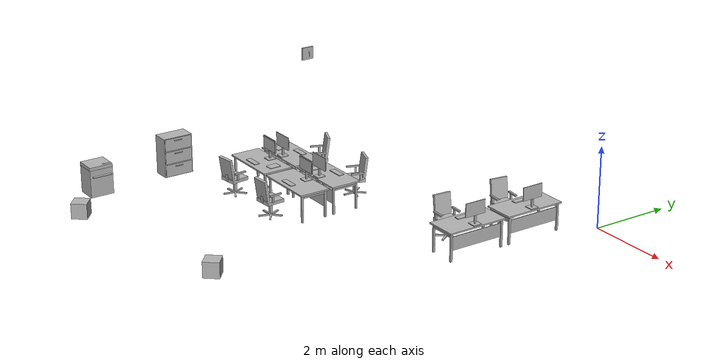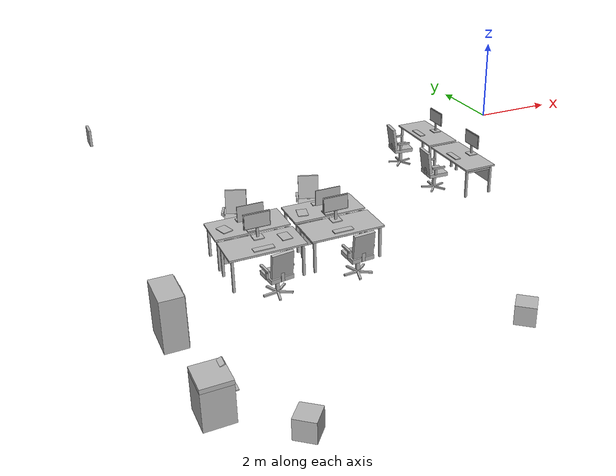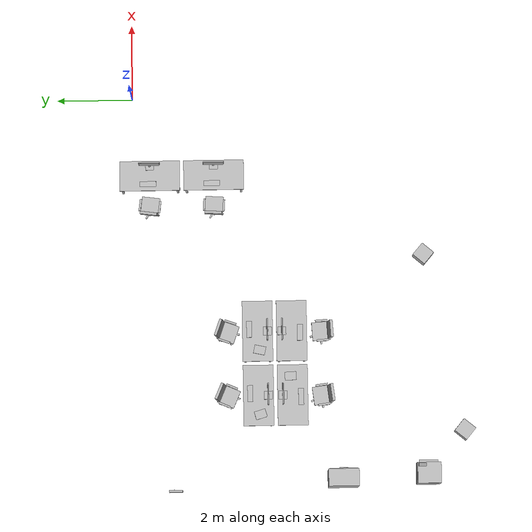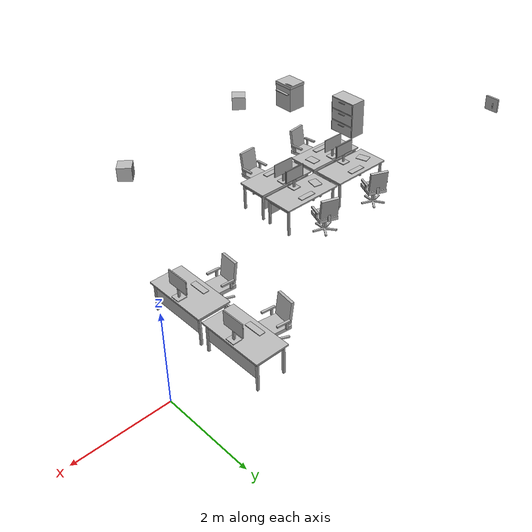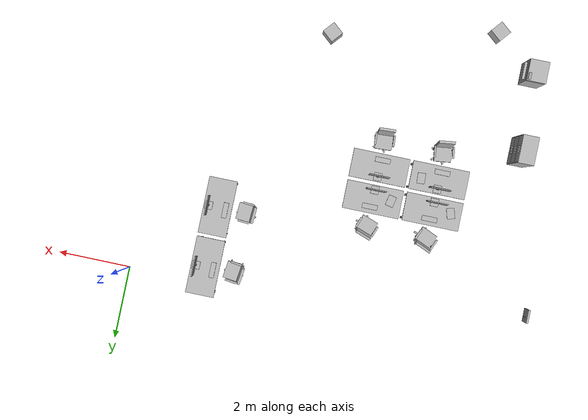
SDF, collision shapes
<sdf version="1.10">
 <model name="office_scene">
  <static>true</static>
  <link name="clock_west">
   <pose>-9.92000 -1.00000 2.35000 0.00000 0.00000 0.00000</pose>
   <visual name="clock_west_visual">
    <geometry><mesh><uri>model://office_scene/meshes/clock_west.glb</uri></mesh></geometry>
   </visual>
   <collision name="clock_west_c0">
    <pose>-0.60379 -0.08456 -0.74333 1.57080 -0.00000 1.57080</pose>
    <geometry><box><size>0.3400 0.3400 0.0500</size></box></geometry>
   </collision>
   <collision name="clock_west_c1">
    <pose>-0.57379 -0.04456 -0.77333 1.57080 -0.00000 2.47080</pose>
    <geometry><box><size>0.0200 0.1400 0.0200</size></box></geometry>
   </collision>
  </link>
  <link name="cube_checker_green">
   <pose>-3.60000 -7.60000 0.20000 0.00000 0.00000 0.00000</pose>
   <visual name="cube_checker_green_visual">
    <geometry><mesh><uri>model://office_scene/meshes/cube_checker_green.glb</uri></mesh></geometry>
   </visual>
   <collision name="cube_checker_green_c0">
    <pose>-0.60379 -0.08456 -0.74333 0.00000 -0.00000 0.86349</pose>
    <geometry><box><size>0.4000 0.4000 0.4000</size></box></geometry>
   </collision>
  </link>
  <link name="cube_wood_yellow">
   <pose>-8.30000 -8.60000 0.20000 0.00000 0.00000 0.00000</pose>
   <visual name="cube_wood_yellow_visual">
    <geometry><mesh><uri>model://office_scene/meshes/cube_wood_yellow.glb</uri></mesh></geometry>
   </visual>
   <collision name="cube_wood_yellow_c0">
    <pose>-0.60379 -0.08456 -0.74333 0.00000 -0.00000 0.87882</pose>
    <geometry><box><size>0.4000 0.4000 0.4000</size></box></geometry>
   </collision>
  </link>
  <link name="filing_cabinet_1">
   <pose>-9.55000 -5.35000 0.00000 0.00000 0.00000 0.00000</pose>
   <visual name="filing_cabinet_1_visual">
    <geometry><mesh><uri>model://office_scene/meshes/filing_cabinet_1.glb</uri></mesh></geometry>
   </visual>
   <collision name="filing_cabinet_1_c0">
    <pose>-0.60379 -0.08456 -0.21833 0.00000 -0.00000 1.57080</pose>
    <geometry><box><size>0.8000 0.4500 1.0500</size></box></geometry>
   </collision>
   <collision name="filing_cabinet_1_c1">
    <pose>-0.37379 -0.08456 -0.56833 0.00000 -0.00000 1.57080</pose>
    <geometry><box><size>0.7500 0.0200 0.3200</size></box></geometry>
   </collision>
   <collision name="filing_cabinet_1_c2">
    <pose>-0.37379 -0.08456 -0.21833 0.00000 -0.00000 1.57080</pose>
    <geometry><box><size>0.7500 0.0200 0.3200</size></box></geometry>
   </collision>
   <collision name="filing_cabinet_1_c3">
    <pose>-0.37379 -0.08456 0.13167 0.00000 -0.00000 1.57080</pose>
    <geometry><box><size>0.7500 0.0200 0.3200</size></box></geometry>
   </collision>
   <collision name="filing_cabinet_1_c4">
    <pose>-0.35379 -0.08456 -0.47033 0.00000 -0.00000 1.57080</pose>
    <geometry><box><size>0.2200 0.0250 0.0200</size></box></geometry>
   </collision>
   <collision name="filing_cabinet_1_c5">
    <pose>-0.35379 -0.08456 -0.12033 0.00000 -0.00000 1.57080</pose>
    <geometry><box><size>0.2200 0.0250 0.0200</size></box></geometry>
   </collision>
   <collision name="filing_cabinet_1_c6">
    <pose>-0.35379 -0.08456 0.22967 0.00000 -0.00000 1.57080</pose>
    <geometry><box><size>0.2200 0.0250 0.0200</size></box></geometry>
   </collision>
  </link>
  <link name="podB_workstation0">
   <pose>-7.35000 -3.15000 0.00000 0.00000 0.00000 0.00000</pose>
   <visual name="podB_workstation0_visual">
    <geometry><mesh><uri>model://office_scene/meshes/podB_workstation0.glb</uri></mesh></geometry>
   </visual>
   <collision name="podB_workstation0_c0">
    <pose>-0.83450 0.81697 -0.07333 0.00000 -0.00000 -0.40808</pose>
    <geometry><box><size>0.0500 0.3200 0.0400</size></box></geometry>
   </collision>
   <collision name="podB_workstation0_c1">
    <pose>-0.35720 0.61062 -0.07333 0.00000 -0.00000 -0.40808</pose>
    <geometry><box><size>0.0500 0.3200 0.0400</size></box></geometry>
   </collision>
   <collision name="podB_workstation0_c2">
    <pose>-0.80276 0.89040 -0.16333 0.00000 -0.00000 -0.40808</pose>
    <geometry><box><size>0.0400 0.0500 0.1600</size></box></geometry>
   </collision>
   <collision name="podB_workstation0_c3">
    <pose>-0.32546 0.68405 -0.16333 0.00000 -0.00000 -0.40808</pose>
    <geometry><box><size>0.0400 0.0500 0.1600</size></box></geometry>
   </collision>
   <collision name="podB_workstation0_c4">
    <pose>-0.51053 0.91114 0.04667 -0.13963 -0.00000 -0.40808</pose>
    <geometry><box><size>0.4500 0.0700 0.5200</size></box></geometry>
   </collision>
   <collision name="podB_workstation0_c5">
    <pose>-0.51648 0.89737 -0.22333 0.00000 -0.00000 -0.40808</pose>
    <geometry><box><size>0.0700 0.0600 0.1800</size></box></geometry>
   </collision>
   <collision name="podB_workstation0_c6">
    <pose>-0.60379 0.69544 -0.47333 0.00000 -0.00000 0.00000</pose>
    <geometry><box><size>0.0700 0.0700 0.2800</size></box></geometry>
   </collision>
   <collision name="podB_workstation0_c7">
    <pose>-0.60379 0.69544 -0.28333 0.00000 -0.00000 -0.40808</pose>
    <geometry><box><size>0.4800 0.4700 0.0900</size></box></geometry>
   </collision>
   <collision name="podB_workstation0_c8">
    <pose>-0.46611 0.63591 -0.67333 0.00000 -0.00000 -0.40808</pose>
    <geometry><box><size>0.3000 0.0450 0.0350</size></box></geometry>
   </collision>
   <collision name="podB_workstation0_c9">
    <pose>-0.50463 0.80799 -0.67333 0.00000 -0.00000 0.84856</pose>
    <geometry><box><size>0.3000 0.0450 0.0350</size></box></geometry>
   </collision>
   <collision name="podB_workstation0_c10">
    <pose>-0.68019 0.82452 -0.67333 0.00000 -0.00000 2.10520</pose>
    <geometry><box><size>0.3000 0.0450 0.0350</size></box></geometry>
   </collision>
   <collision name="podB_workstation0_c11">
    <pose>-0.75017 0.66267 -0.67333 0.00000 -0.00000 -2.92135</pose>
    <geometry><box><size>0.3000 0.0450 0.0350</size></box></geometry>
   </collision>
   <collision name="podB_workstation0_c12">
    <pose>-0.61786 0.54610 -0.67333 0.00000 -0.00000 -1.66471</pose>
    <geometry><box><size>0.3000 0.0450 0.0350</size></box></geometry>
   </collision>
   <collision name="podB_workstation0_c13">
    <pose>-0.55379 0.13544 0.00567 0.00000 -0.00000 -3.14159</pose>
    <geometry><box><size>0.4300 0.1400 0.0200</size></box></geometry>
   </collision>
   <collision name="podB_workstation0_c14">
    <pose>-1.10379 -0.13456 0.00267 0.00000 -0.00000 -2.85584</pose>
    <geometry><box><size>0.2200 0.3000 0.0200</size></box></geometry>
   </collision>
   <collision name="podB_workstation0_c15">
    <pose>0.12621 0.24544 -0.39333 0.00000 -0.00000 -3.14159</pose>
    <geometry><box><size>0.0500 0.0500 0.7000</size></box></geometry>
   </collision>
   <collision name="podB_workstation0_c16">
    <pose>0.12621 -0.41456 -0.39333 0.00000 -0.00000 -3.14159</pose>
    <geometry><box><size>0.0500 0.0500 0.7000</size></box></geometry>
   </collision>
   <collision name="podB_workstation0_c17">
    <pose>-1.33379 0.24544 -0.39333 0.00000 -0.00000 -3.14159</pose>
    <geometry><box><size>0.0500 0.0500 0.7000</size></box></geometry>
   </collision>
   <collision name="podB_workstation0_c18">
    <pose>-1.33379 -0.41456 -0.39333 0.00000 -0.00000 -3.14159</pose>
    <geometry><box><size>0.0500 0.0500 0.7000</size></box></geometry>
   </collision>
   <collision name="podB_workstation0_c19">
    <pose>-0.60379 -0.40456 -0.30333 0.00000 -0.00000 -3.14159</pose>
    <geometry><box><size>1.4000 0.0200 0.3400</size></box></geometry>
   </collision>
   <collision name="podB_workstation0_c20">
    <pose>0.12621 -0.08456 -0.10333 0.00000 -0.00000 -3.14159</pose>
    <geometry><box><size>0.0400 0.6600 0.0400</size></box></geometry>
   </collision>
   <collision name="podB_workstation0_c21">
    <pose>-1.33379 -0.08456 -0.10333 0.00000 -0.00000 -3.14159</pose>
    <geometry><box><size>0.0400 0.6600 0.0400</size></box></geometry>
   </collision>
   <collision name="podB_workstation0_c22">
    <pose>-0.60379 -0.08456 -0.02233 0.00000 -0.00000 -3.14159</pose>
    <geometry><box><size>1.6000 0.8000 0.0380</size></box></geometry>
   </collision>
   <collision name="podB_workstation0_c23">
    <pose>-0.60379 -0.34456 0.00667 0.00000 -0.00000 0.00000</pose>
    <geometry><box><size>0.2200 0.2200 0.0200</size></box></geometry>
   </collision>
   <collision name="podB_workstation0_c24">
    <pose>-0.60379 -0.34456 0.11667 0.00000 -0.00000 -3.14159</pose>
    <geometry><box><size>0.0500 0.0400 0.2000</size></box></geometry>
   </collision>
   <collision name="podB_workstation0_c25">
    <pose>-0.60379 -0.34456 0.38667 0.00000 -0.00000 -3.14159</pose>
    <geometry><box><size>0.5600 0.0220 0.3400</size></box></geometry>
   </collision>
   <collision name="podB_workstation0_c26">
    <pose>-0.60379 -0.33056 0.38667 0.00000 -0.00000 -3.14159</pose>
    <geometry><box><size>0.5300 0.0200 0.3050</size></box></geometry>
   </collision>
  </link>
  <link name="podB_workstation1">
   <pose>-5.65000 -3.15000 0.00000 0.00000 0.00000 0.00000</pose>
   <visual name="podB_workstation1_visual">
    <geometry><mesh><uri>model://office_scene/meshes/podB_workstation1.glb</uri></mesh></geometry>
   </visual>
   <collision name="podB_workstation1_c0">
    <pose>-0.84181 0.80195 -0.07333 0.00000 -0.00000 -0.34399</pose>
    <geometry><box><size>0.0500 0.3200 0.0400</size></box></geometry>
   </collision>
   <collision name="podB_workstation1_c1">
    <pose>-0.35228 0.62658 -0.07333 0.00000 -0.00000 -0.34399</pose>
    <geometry><box><size>0.0500 0.3200 0.0400</size></box></geometry>
   </collision>
   <collision name="podB_workstation1_c2">
    <pose>-0.81483 0.87726 -0.16333 0.00000 -0.00000 -0.34399</pose>
    <geometry><box><size>0.0400 0.0500 0.1600</size></box></geometry>
   </collision>
   <collision name="podB_workstation1_c3">
    <pose>-0.32530 0.70190 -0.16333 0.00000 -0.00000 -0.34399</pose>
    <geometry><box><size>0.0400 0.0500 0.1600</size></box></geometry>
   </collision>
   <collision name="podB_workstation1_c4">
    <pose>-0.52454 0.91667 0.04667 -0.13963 -0.00000 -0.34399</pose>
    <geometry><box><size>0.4500 0.0700 0.5200</size></box></geometry>
   </collision>
   <collision name="podB_workstation1_c5">
    <pose>-0.52960 0.90255 -0.22333 0.00000 -0.00000 -0.34399</pose>
    <geometry><box><size>0.0700 0.0600 0.1800</size></box></geometry>
   </collision>
   <collision name="podB_workstation1_c6">
    <pose>-0.60379 0.69544 -0.47333 0.00000 -0.00000 0.00000</pose>
    <geometry><box><size>0.0700 0.0700 0.2800</size></box></geometry>
   </collision>
   <collision name="podB_workstation1_c7">
    <pose>-0.60379 0.69544 -0.28333 0.00000 -0.00000 -0.34399</pose>
    <geometry><box><size>0.4800 0.4700 0.0900</size></box></geometry>
   </collision>
   <collision name="podB_workstation1_c8">
    <pose>-0.46258 0.64485 -0.67333 0.00000 -0.00000 -0.34399</pose>
    <geometry><box><size>0.3000 0.0450 0.0350</size></box></geometry>
   </collision>
   <collision name="podB_workstation1_c9">
    <pose>-0.51204 0.81411 -0.67333 0.00000 -0.00000 0.91265</pose>
    <geometry><box><size>0.3000 0.0450 0.0350</size></box></geometry>
   </collision>
   <collision name="podB_workstation1_c10">
    <pose>-0.68830 0.81937 -0.67333 0.00000 -0.00000 2.16929</pose>
    <geometry><box><size>0.3000 0.0450 0.0350</size></box></geometry>
   </collision>
   <collision name="podB_workstation1_c11">
    <pose>-0.74777 0.65336 -0.67333 0.00000 -0.00000 -2.85726</pose>
    <geometry><box><size>0.3000 0.0450 0.0350</size></box></geometry>
   </collision>
   <collision name="podB_workstation1_c12">
    <pose>-0.60826 0.54550 -0.67333 0.00000 -0.00000 -1.60062</pose>
    <geometry><box><size>0.3000 0.0450 0.0350</size></box></geometry>
   </collision>
   <collision name="podB_workstation1_c13">
    <pose>-0.55379 0.13544 0.00567 0.00000 -0.00000 -3.14159</pose>
    <geometry><box><size>0.4300 0.1400 0.0200</size></box></geometry>
   </collision>
   <collision name="podB_workstation1_c14">
    <pose>-1.10379 -0.13456 0.00267 0.00000 -0.00000 2.92815</pose>
    <geometry><box><size>0.2200 0.3000 0.0200</size></box></geometry>
   </collision>
   <collision name="podB_workstation1_c15">
    <pose>0.12621 0.24544 -0.39333 0.00000 -0.00000 -3.14159</pose>
    <geometry><box><size>0.0500 0.0500 0.7000</size></box></geometry>
   </collision>
   <collision name="podB_workstation1_c16">
    <pose>0.12621 -0.41456 -0.39333 0.00000 -0.00000 -3.14159</pose>
    <geometry><box><size>0.0500 0.0500 0.7000</size></box></geometry>
   </collision>
   <collision name="podB_workstation1_c17">
    <pose>-1.33379 0.24544 -0.39333 0.00000 -0.00000 -3.14159</pose>
    <geometry><box><size>0.0500 0.0500 0.7000</size></box></geometry>
   </collision>
   <collision name="podB_workstation1_c18">
    <pose>-1.33379 -0.41456 -0.39333 0.00000 -0.00000 -3.14159</pose>
    <geometry><box><size>0.0500 0.0500 0.7000</size></box></geometry>
   </collision>
   <collision name="podB_workstation1_c19">
    <pose>-0.60379 -0.40456 -0.30333 0.00000 -0.00000 -3.14159</pose>
    <geometry><box><size>1.4000 0.0200 0.3400</size></box></geometry>
   </collision>
   <collision name="podB_workstation1_c20">
    <pose>0.12621 -0.08456 -0.10333 0.00000 -0.00000 -3.14159</pose>
    <geometry><box><size>0.0400 0.6600 0.0400</size></box></geometry>
   </collision>
   <collision name="podB_workstation1_c21">
    <pose>-1.33379 -0.08456 -0.10333 0.00000 -0.00000 -3.14159</pose>
    <geometry><box><size>0.0400 0.6600 0.0400</size></box></geometry>
   </collision>
   <collision name="podB_workstation1_c22">
    <pose>-0.60379 -0.08456 -0.02233 0.00000 -0.00000 -3.14159</pose>
    <geometry><box><size>1.6000 0.8000 0.0380</size></box></geometry>
   </collision>
   <collision name="podB_workstation1_c23">
    <pose>-0.60379 -0.34456 0.00667 0.00000 -0.00000 0.00000</pose>
    <geometry><box><size>0.2200 0.2200 0.0200</size></box></geometry>
   </collision>
   <collision name="podB_workstation1_c24">
    <pose>-0.60379 -0.34456 0.11667 0.00000 -0.00000 -3.14159</pose>
    <geometry><box><size>0.0500 0.0400 0.2000</size></box></geometry>
   </collision>
   <collision name="podB_workstation1_c25">
    <pose>-0.60379 -0.34456 0.38667 0.00000 -0.00000 -3.14159</pose>
    <geometry><box><size>0.5600 0.0220 0.3400</size></box></geometry>
   </collision>
   <collision name="podB_workstation1_c26">
    <pose>-0.60379 -0.33056 0.38667 0.00000 -0.00000 -3.14159</pose>
    <geometry><box><size>0.5300 0.0200 0.3050</size></box></geometry>
   </collision>
  </link>
  <link name="podB_workstation2">
   <pose>-7.35000 -4.05000 0.00000 0.00000 0.00000 0.00000</pose>
   <visual name="podB_workstation2_visual">
    <geometry><mesh><uri>model://office_scene/meshes/podB_workstation2.glb</uri></mesh></geometry>
   </visual>
   <collision name="podB_workstation2_c0">
    <pose>-0.34333 -0.85199 -0.07333 0.00000 -0.00000 -3.01657</pose>
    <geometry><box><size>0.0500 0.3200 0.0400</size></box></geometry>
   </collision>
   <collision name="podB_workstation2_c1">
    <pose>-0.85927 -0.91683 -0.07333 0.00000 -0.00000 -3.01657</pose>
    <geometry><box><size>0.0500 0.3200 0.0400</size></box></geometry>
   </collision>
   <collision name="podB_workstation2_c2">
    <pose>-0.33335 -0.93136 -0.16333 0.00000 -0.00000 -3.01657</pose>
    <geometry><box><size>0.0400 0.0500 0.1600</size></box></geometry>
   </collision>
   <collision name="podB_workstation2_c3">
    <pose>-0.84929 -0.99620 -0.16333 0.00000 -0.00000 -3.01657</pose>
    <geometry><box><size>0.0400 0.0500 0.1600</size></box></geometry>
   </collision>
   <collision name="podB_workstation2_c4">
    <pose>-0.57449 -1.09773 0.04667 -0.13963 -0.00000 -3.01657</pose>
    <geometry><box><size>0.4500 0.0700 0.5200</size></box></geometry>
   </collision>
   <collision name="podB_workstation2_c5">
    <pose>-0.57636 -1.08285 -0.22333 0.00000 -0.00000 -3.01657</pose>
    <geometry><box><size>0.0700 0.0600 0.1800</size></box></geometry>
   </collision>
   <collision name="podB_workstation2_c6">
    <pose>-0.60379 -0.86456 -0.47333 0.00000 -0.00000 0.00000</pose>
    <geometry><box><size>0.0700 0.0700 0.2800</size></box></geometry>
   </collision>
   <collision name="podB_workstation2_c7">
    <pose>-0.60379 -0.86456 -0.28333 0.00000 -0.00000 -3.01657</pose>
    <geometry><box><size>0.4800 0.4700 0.0900</size></box></geometry>
   </collision>
   <collision name="podB_workstation2_c8">
    <pose>-0.75262 -0.88327 -0.67333 0.00000 -0.00000 -3.01657</pose>
    <geometry><box><size>0.3000 0.0450 0.0350</size></box></geometry>
   </collision>
   <collision name="podB_workstation2_c9">
    <pose>-0.63199 -1.01189 -0.67333 0.00000 -0.00000 -1.75993</pose>
    <geometry><box><size>0.3000 0.0450 0.0350</size></box></geometry>
   </collision>
   <collision name="podB_workstation2_c10">
    <pose>-0.47239 -0.93691 -0.67333 0.00000 -0.00000 -0.50330</pose>
    <geometry><box><size>0.3000 0.0450 0.0350</size></box></geometry>
   </collision>
   <collision name="podB_workstation2_c11">
    <pose>-0.49438 -0.76195 -0.67333 0.00000 -0.00000 0.75334</pose>
    <geometry><box><size>0.3000 0.0450 0.0350</size></box></geometry>
   </collision>
   <collision name="podB_workstation2_c12">
    <pose>-0.66757 -0.72880 -0.67333 0.00000 -0.00000 2.00998</pose>
    <geometry><box><size>0.3000 0.0450 0.0350</size></box></geometry>
   </collision>
   <collision name="podB_workstation2_c13">
    <pose>-0.65379 -0.30456 0.00567 0.00000 -0.00000 0.00000</pose>
    <geometry><box><size>0.4300 0.1400 0.0200</size></box></geometry>
   </collision>
   <collision name="podB_workstation2_c14">
    <pose>-0.10379 -0.03456 0.00267 0.00000 -0.00000 0.04896</pose>
    <geometry><box><size>0.2200 0.3000 0.0200</size></box></geometry>
   </collision>
   <collision name="podB_workstation2_c15">
    <pose>-1.33379 -0.41456 -0.39333 0.00000 -0.00000 0.00000</pose>
    <geometry><box><size>0.0500 0.0500 0.7000</size></box></geometry>
   </collision>
   <collision name="podB_workstation2_c16">
    <pose>-1.33379 0.24544 -0.39333 0.00000 -0.00000 0.00000</pose>
    <geometry><box><size>0.0500 0.0500 0.7000</size></box></geometry>
   </collision>
   <collision name="podB_workstation2_c17">
    <pose>0.12621 -0.41456 -0.39333 0.00000 -0.00000 0.00000</pose>
    <geometry><box><size>0.0500 0.0500 0.7000</size></box></geometry>
   </collision>
   <collision name="podB_workstation2_c18">
    <pose>0.12621 0.24544 -0.39333 0.00000 -0.00000 0.00000</pose>
    <geometry><box><size>0.0500 0.0500 0.7000</size></box></geometry>
   </collision>
   <collision name="podB_workstation2_c19">
    <pose>-0.60379 0.23544 -0.30333 0.00000 -0.00000 0.00000</pose>
    <geometry><box><size>1.4000 0.0200 0.3400</size></box></geometry>
   </collision>
   <collision name="podB_workstation2_c20">
    <pose>-1.33379 -0.08456 -0.10333 0.00000 -0.00000 0.00000</pose>
    <geometry><box><size>0.0400 0.6600 0.0400</size></box></geometry>
   </collision>
   <collision name="podB_workstation2_c21">
    <pose>0.12621 -0.08456 -0.10333 0.00000 -0.00000 0.00000</pose>
    <geometry><box><size>0.0400 0.6600 0.0400</size></box></geometry>
   </collision>
   <collision name="podB_workstation2_c22">
    <pose>-0.60379 -0.08456 -0.02233 0.00000 -0.00000 0.00000</pose>
    <geometry><box><size>1.6000 0.8000 0.0380</size></box></geometry>
   </collision>
   <collision name="podB_workstation2_c23">
    <pose>-0.60379 0.17544 0.00667 0.00000 -0.00000 0.00000</pose>
    <geometry><box><size>0.2200 0.2200 0.0200</size></box></geometry>
   </collision>
   <collision name="podB_workstation2_c24">
    <pose>-0.60379 0.17544 0.11667 0.00000 -0.00000 0.00000</pose>
    <geometry><box><size>0.0500 0.0400 0.2000</size></box></geometry>
   </collision>
   <collision name="podB_workstation2_c25">
    <pose>-0.60379 0.17544 0.38667 0.00000 -0.00000 0.00000</pose>
    <geometry><box><size>0.5600 0.0220 0.3400</size></box></geometry>
   </collision>
   <collision name="podB_workstation2_c26">
    <pose>-0.60379 0.16144 0.38667 0.00000 -0.00000 0.00000</pose>
    <geometry><box><size>0.5300 0.0200 0.3050</size></box></geometry>
   </collision>
  </link>
  <link name="podB_workstation3">
   <pose>-5.65000 -4.05000 0.00000 0.00000 0.00000 0.00000</pose>
   <visual name="podB_workstation3_visual">
    <geometry><mesh><uri>model://office_scene/meshes/podB_workstation3.glb</uri></mesh></geometry>
   </visual>
   <collision name="podB_workstation3_c0">
    <pose>-0.34307 -0.86948 -0.07333 0.00000 -0.00000 -3.08366</pose>
    <geometry><box><size>0.0500 0.3200 0.0400</size></box></geometry>
   </collision>
   <collision name="podB_workstation3_c1">
    <pose>-0.86220 -0.89958 -0.07333 0.00000 -0.00000 -3.08366</pose>
    <geometry><box><size>0.0500 0.3200 0.0400</size></box></geometry>
   </collision>
   <collision name="podB_workstation3_c2">
    <pose>-0.33844 -0.94934 -0.16333 0.00000 -0.00000 -3.08366</pose>
    <geometry><box><size>0.0400 0.0500 0.1600</size></box></geometry>
   </collision>
   <collision name="podB_workstation3_c3">
    <pose>-0.85756 -0.97945 -0.16333 0.00000 -0.00000 -3.08366</pose>
    <geometry><box><size>0.0400 0.0500 0.1600</size></box></geometry>
   </collision>
   <collision name="podB_workstation3_c4">
    <pose>-0.59018 -1.09917 0.04667 -0.13963 -0.00000 -3.08366</pose>
    <geometry><box><size>0.4500 0.0700 0.5200</size></box></geometry>
   </collision>
   <collision name="podB_workstation3_c5">
    <pose>-0.59105 -1.08419 -0.22333 0.00000 -0.00000 -3.08366</pose>
    <geometry><box><size>0.0700 0.0600 0.1800</size></box></geometry>
   </collision>
   <collision name="podB_workstation3_c6">
    <pose>-0.60379 -0.86456 -0.47333 0.00000 -0.00000 0.00000</pose>
    <geometry><box><size>0.0700 0.0700 0.2800</size></box></geometry>
   </collision>
   <collision name="podB_workstation3_c7">
    <pose>-0.60379 -0.86456 -0.28333 0.00000 -0.00000 -3.08366</pose>
    <geometry><box><size>0.4800 0.4700 0.0900</size></box></geometry>
   </collision>
   <collision name="podB_workstation3_c8">
    <pose>-0.75354 -0.87325 -0.67333 0.00000 -0.00000 -3.08366</pose>
    <geometry><box><size>0.3000 0.0450 0.0350</size></box></geometry>
   </collision>
   <collision name="podB_workstation3_c9">
    <pose>-0.64180 -1.00967 -0.67333 0.00000 -0.00000 -1.82702</pose>
    <geometry><box><size>0.3000 0.0450 0.0350</size></box></geometry>
   </collision>
   <collision name="podB_workstation3_c10">
    <pose>-0.47754 -0.94556 -0.67333 0.00000 -0.00000 -0.57039</pose>
    <geometry><box><size>0.3000 0.0450 0.0350</size></box></geometry>
   </collision>
   <collision name="podB_workstation3_c11">
    <pose>-0.48775 -0.76952 -0.67333 0.00000 -0.00000 0.68625</pose>
    <geometry><box><size>0.3000 0.0450 0.0350</size></box></geometry>
   </collision>
   <collision name="podB_workstation3_c12">
    <pose>-0.65832 -0.72483 -0.67333 0.00000 -0.00000 1.94289</pose>
    <geometry><box><size>0.3000 0.0450 0.0350</size></box></geometry>
   </collision>
   <collision name="podB_workstation3_c13">
    <pose>-0.65379 -0.30456 0.00567 0.00000 -0.00000 0.00000</pose>
    <geometry><box><size>0.4300 0.1400 0.0200</size></box></geometry>
   </collision>
   <collision name="podB_workstation3_c14">
    <pose>-1.33379 -0.41456 -0.39333 0.00000 -0.00000 0.00000</pose>
    <geometry><box><size>0.0500 0.0500 0.7000</size></box></geometry>
   </collision>
   <collision name="podB_workstation3_c15">
    <pose>-1.33379 0.24544 -0.39333 0.00000 -0.00000 0.00000</pose>
    <geometry><box><size>0.0500 0.0500 0.7000</size></box></geometry>
   </collision>
   <collision name="podB_workstation3_c16">
    <pose>0.12621 -0.41456 -0.39333 0.00000 -0.00000 0.00000</pose>
    <geometry><box><size>0.0500 0.0500 0.7000</size></box></geometry>
   </collision>
   <collision name="podB_workstation3_c17">
    <pose>0.12621 0.24544 -0.39333 0.00000 -0.00000 0.00000</pose>
    <geometry><box><size>0.0500 0.0500 0.7000</size></box></geometry>
   </collision>
   <collision name="podB_workstation3_c18">
    <pose>-0.60379 0.23544 -0.30333 0.00000 -0.00000 0.00000</pose>
    <geometry><box><size>1.4000 0.0200 0.3400</size></box></geometry>
   </collision>
   <collision name="podB_workstation3_c19">
    <pose>-1.33379 -0.08456 -0.10333 0.00000 -0.00000 0.00000</pose>
    <geometry><box><size>0.0400 0.6600 0.0400</size></box></geometry>
   </collision>
   <collision name="podB_workstation3_c20">
    <pose>0.12621 -0.08456 -0.10333 0.00000 -0.00000 0.00000</pose>
    <geometry><box><size>0.0400 0.6600 0.0400</size></box></geometry>
   </collision>
   <collision name="podB_workstation3_c21">
    <pose>-0.60379 -0.08456 -0.02233 0.00000 -0.00000 0.00000</pose>
    <geometry><box><size>1.6000 0.8000 0.0380</size></box></geometry>
   </collision>
   <collision name="podB_workstation3_c22">
    <pose>-0.60379 0.17544 0.00667 0.00000 -0.00000 0.00000</pose>
    <geometry><box><size>0.2200 0.2200 0.0200</size></box></geometry>
   </collision>
   <collision name="podB_workstation3_c23">
    <pose>-0.60379 0.17544 0.11667 0.00000 -0.00000 0.00000</pose>
    <geometry><box><size>0.0500 0.0400 0.2000</size></box></geometry>
   </collision>
   <collision name="podB_workstation3_c24">
    <pose>-0.60379 0.17544 0.38667 0.00000 -0.00000 0.00000</pose>
    <geometry><box><size>0.5600 0.0220 0.3400</size></box></geometry>
   </collision>
   <collision name="podB_workstation3_c25">
    <pose>-0.60379 0.16144 0.38667 0.00000 -0.00000 0.00000</pose>
    <geometry><box><size>0.5300 0.0200 0.3050</size></box></geometry>
   </collision>
  </link>
  <link name="podC_workstation0">
   <pose>-1.45000 -2.05000 0.00000 0.00000 0.00000 0.00000</pose>
   <visual name="podC_workstation0_visual">
    <geometry><mesh><uri>model://office_scene/meshes/podC_workstation0.glb</uri></mesh></geometry>
   </visual>
   <collision name="podC_workstation0_c0">
    <pose>-1.42068 -0.34271 -0.07333 0.00000 -0.00000 1.50563</pose>
    <geometry><box><size>0.0500 0.3200 0.0400</size></box></geometry>
   </collision>
   <collision name="podC_workstation0_c1">
    <pose>-1.38682 0.17619 -0.07333 0.00000 -0.00000 1.50563</pose>
    <geometry><box><size>0.0500 0.3200 0.0400</size></box></geometry>
   </collision>
   <collision name="podC_workstation0_c2">
    <pose>-1.50051 -0.33750 -0.16333 0.00000 -0.00000 1.50563</pose>
    <geometry><box><size>0.0400 0.0500 0.1600</size></box></geometry>
   </collision>
   <collision name="podC_workstation0_c3">
    <pose>-1.46665 0.18140 -0.16333 0.00000 -0.00000 1.50563</pose>
    <geometry><box><size>0.0400 0.0500 0.1600</size></box></geometry>
   </collision>
   <collision name="podC_workstation0_c4">
    <pose>-1.61669 -0.06385 0.04825 -0.13963 -0.00000 1.50563</pose>
    <geometry><box><size>0.4511 0.0702 0.5213</size></box></geometry>
   </collision>
   <collision name="podC_workstation0_c5">
    <pose>-1.60332 -0.07024 -0.22333 0.00000 -0.00000 1.50563</pose>
    <geometry><box><size>0.0700 0.0600 0.1800</size></box></geometry>
   </collision>
   <collision name="podC_workstation0_c6">
    <pose>-1.38379 -0.08456 -0.47333 0.00000 -0.00000 0.00000</pose>
    <geometry><box><size>0.0700 0.0700 0.2800</size></box></geometry>
   </collision>
   <collision name="podC_workstation0_c7">
    <pose>-1.38379 -0.08456 -0.28333 0.00000 -0.00000 1.50563</pose>
    <geometry><box><size>0.4800 0.4700 0.0900</size></box></geometry>
   </collision>
   <collision name="podC_workstation0_c8">
    <pose>-1.37402 0.06512 -0.67333 0.00000 -0.00000 1.50563</pose>
    <geometry><box><size>0.3000 0.0450 0.0350</size></box></geometry>
   </collision>
   <collision name="podC_workstation0_c9">
    <pose>-1.52313 -0.02902 -0.67333 0.00000 -0.00000 2.76227</pose>
    <geometry><box><size>0.3000 0.0450 0.0350</size></box></geometry>
   </collision>
   <collision name="podC_workstation0_c10">
    <pose>-1.47967 -0.19992 -0.67333 0.00000 -0.00000 -2.26428</pose>
    <geometry><box><size>0.3000 0.0450 0.0350</size></box></geometry>
   </collision>
   <collision name="podC_workstation0_c11">
    <pose>-1.30371 -0.21140 -0.67333 0.00000 -0.00000 -1.00764</pose>
    <geometry><box><size>0.3000 0.0450 0.0350</size></box></geometry>
   </collision>
   <collision name="podC_workstation0_c12">
    <pose>-1.23842 -0.04760 -0.67333 0.00000 -0.00000 0.24899</pose>
    <geometry><box><size>0.3000 0.0450 0.0350</size></box></geometry>
   </collision>
   <collision name="podC_workstation0_c13">
    <pose>-0.82379 -0.03456 0.00567 0.00000 -0.00000 -1.57080</pose>
    <geometry><box><size>0.4300 0.1400 0.0200</size></box></geometry>
   </collision>
   <collision name="podC_workstation0_c14">
    <pose>-0.93379 0.64544 -0.39333 0.00000 -0.00000 -1.57080</pose>
    <geometry><box><size>0.0500 0.0500 0.7000</size></box></geometry>
   </collision>
   <collision name="podC_workstation0_c15">
    <pose>-0.27379 0.64544 -0.39333 0.00000 -0.00000 -1.57080</pose>
    <geometry><box><size>0.0500 0.0500 0.7000</size></box></geometry>
   </collision>
   <collision name="podC_workstation0_c16">
    <pose>-0.93379 -0.81456 -0.39333 0.00000 -0.00000 -1.57080</pose>
    <geometry><box><size>0.0500 0.0500 0.7000</size></box></geometry>
   </collision>
   <collision name="podC_workstation0_c17">
    <pose>-0.27379 -0.81456 -0.39333 0.00000 -0.00000 -1.57080</pose>
    <geometry><box><size>0.0500 0.0500 0.7000</size></box></geometry>
   </collision>
   <collision name="podC_workstation0_c18">
    <pose>-0.28379 -0.08456 -0.30333 0.00000 -0.00000 -1.57080</pose>
    <geometry><box><size>1.4000 0.0200 0.3400</size></box></geometry>
   </collision>
   <collision name="podC_workstation0_c19">
    <pose>-0.60379 0.64544 -0.10333 0.00000 -0.00000 -1.57080</pose>
    <geometry><box><size>0.0400 0.6600 0.0400</size></box></geometry>
   </collision>
   <collision name="podC_workstation0_c20">
    <pose>-0.60379 -0.81456 -0.10333 0.00000 -0.00000 -1.57080</pose>
    <geometry><box><size>0.0400 0.6600 0.0400</size></box></geometry>
   </collision>
   <collision name="podC_workstation0_c21">
    <pose>-0.60379 -0.08456 -0.02233 0.00000 -0.00000 -1.57080</pose>
    <geometry><box><size>1.6000 0.8000 0.0380</size></box></geometry>
   </collision>
   <collision name="podC_workstation0_c22">
    <pose>-0.34379 -0.08456 0.00667 0.00000 -0.00000 0.00000</pose>
    <geometry><box><size>0.2200 0.2200 0.0200</size></box></geometry>
   </collision>
   <collision name="podC_workstation0_c23">
    <pose>-0.34379 -0.08456 0.11667 0.00000 -0.00000 -1.57080</pose>
    <geometry><box><size>0.0500 0.0400 0.2000</size></box></geometry>
   </collision>
   <collision name="podC_workstation0_c24">
    <pose>-0.34379 -0.08456 0.38667 0.00000 -0.00000 -1.57080</pose>
    <geometry><box><size>0.5600 0.0220 0.3400</size></box></geometry>
   </collision>
   <collision name="podC_workstation0_c25">
    <pose>-0.35779 -0.08456 0.38667 0.00000 -0.00000 -1.57080</pose>
    <geometry><box><size>0.5300 0.0200 0.3050</size></box></geometry>
   </collision>
  </link>
  <link name="podC_workstation1">
   <pose>-1.45000 -0.35000 0.00000 0.00000 0.00000 0.00000</pose>
   <visual name="podC_workstation1_visual">
    <geometry><mesh><uri>model://office_scene/meshes/podC_workstation1.glb</uri></mesh></geometry>
   </visual>
   <collision name="podC_workstation1_c0">
    <pose>-1.43594 -0.34006 -0.07333 0.00000 -0.00000 1.44622</pose>
    <geometry><box><size>0.0500 0.3200 0.0400</size></box></geometry>
   </collision>
   <collision name="podC_workstation1_c1">
    <pose>-1.37133 0.17591 -0.07333 0.00000 -0.00000 1.44622</pose>
    <geometry><box><size>0.0500 0.3200 0.0400</size></box></geometry>
   </collision>
   <collision name="podC_workstation1_c2">
    <pose>-1.51532 -0.33012 -0.16333 0.00000 -0.00000 1.44622</pose>
    <geometry><box><size>0.0400 0.0500 0.1600</size></box></geometry>
   </collision>
   <collision name="podC_workstation1_c3">
    <pose>-1.45071 0.18585 -0.16333 0.00000 -0.00000 1.44622</pose>
    <geometry><box><size>0.0400 0.0500 0.1600</size></box></geometry>
   </collision>
   <collision name="podC_workstation1_c4">
    <pose>-1.61697 -0.05536 0.04667 -0.13963 -0.00000 1.44622</pose>
    <geometry><box><size>0.4500 0.0700 0.5200</size></box></geometry>
   </collision>
   <collision name="podC_workstation1_c5">
    <pose>-1.60209 -0.05723 -0.22333 0.00000 -0.00000 1.44622</pose>
    <geometry><box><size>0.0700 0.0600 0.1800</size></box></geometry>
   </collision>
   <collision name="podC_workstation1_c6">
    <pose>-1.38379 -0.08456 -0.47333 0.00000 -0.00000 0.00000</pose>
    <geometry><box><size>0.0700 0.0700 0.2800</size></box></geometry>
   </collision>
   <collision name="podC_workstation1_c7">
    <pose>-1.38379 -0.08456 -0.28333 0.00000 -0.00000 1.44622</pose>
    <geometry><box><size>0.4800 0.4700 0.0900</size></box></geometry>
   </collision>
   <collision name="podC_workstation1_c8">
    <pose>-1.36515 0.06427 -0.67333 0.00000 -0.00000 1.44622</pose>
    <geometry><box><size>0.3000 0.0450 0.0350</size></box></geometry>
   </collision>
   <collision name="podC_workstation1_c9">
    <pose>-1.51958 -0.02084 -0.67333 0.00000 -0.00000 2.70286</pose>
    <geometry><box><size>0.3000 0.0450 0.0350</size></box></geometry>
   </collision>
   <collision name="podC_workstation1_c10">
    <pose>-1.48635 -0.19402 -0.67333 0.00000 -0.00000 -2.32369</pose>
    <geometry><box><size>0.3000 0.0450 0.0350</size></box></geometry>
   </collision>
   <collision name="podC_workstation1_c11">
    <pose>-1.31138 -0.21593 -0.67333 0.00000 -0.00000 -1.06705</pose>
    <geometry><box><size>0.3000 0.0450 0.0350</size></box></geometry>
   </collision>
   <collision name="podC_workstation1_c12">
    <pose>-1.23648 -0.05630 -0.67333 0.00000 -0.00000 0.18958</pose>
    <geometry><box><size>0.3000 0.0450 0.0350</size></box></geometry>
   </collision>
   <collision name="podC_workstation1_c13">
    <pose>-0.82379 -0.03456 0.00567 0.00000 -0.00000 -1.57080</pose>
    <geometry><box><size>0.4300 0.1400 0.0200</size></box></geometry>
   </collision>
   <collision name="podC_workstation1_c14">
    <pose>-0.93379 0.64544 -0.39333 0.00000 -0.00000 -1.57080</pose>
    <geometry><box><size>0.0500 0.0500 0.7000</size></box></geometry>
   </collision>
   <collision name="podC_workstation1_c15">
    <pose>-0.27379 0.64544 -0.39333 0.00000 -0.00000 -1.57080</pose>
    <geometry><box><size>0.0500 0.0500 0.7000</size></box></geometry>
   </collision>
   <collision name="podC_workstation1_c16">
    <pose>-0.93379 -0.81456 -0.39333 0.00000 -0.00000 -1.57080</pose>
    <geometry><box><size>0.0500 0.0500 0.7000</size></box></geometry>
   </collision>
   <collision name="podC_workstation1_c17">
    <pose>-0.27379 -0.81456 -0.39333 0.00000 -0.00000 -1.57080</pose>
    <geometry><box><size>0.0500 0.0500 0.7000</size></box></geometry>
   </collision>
   <collision name="podC_workstation1_c18">
    <pose>-0.28379 -0.08456 -0.30333 0.00000 -0.00000 -1.57080</pose>
    <geometry><box><size>1.4000 0.0200 0.3400</size></box></geometry>
   </collision>
   <collision name="podC_workstation1_c19">
    <pose>-0.60379 0.64544 -0.10333 0.00000 -0.00000 -1.57080</pose>
    <geometry><box><size>0.0400 0.6600 0.0400</size></box></geometry>
   </collision>
   <collision name="podC_workstation1_c20">
    <pose>-0.60379 -0.81456 -0.10333 0.00000 -0.00000 -1.57080</pose>
    <geometry><box><size>0.0400 0.6600 0.0400</size></box></geometry>
   </collision>
   <collision name="podC_workstation1_c21">
    <pose>-0.60379 -0.08456 -0.02233 0.00000 -0.00000 -1.57080</pose>
    <geometry><box><size>1.6000 0.8000 0.0380</size></box></geometry>
   </collision>
   <collision name="podC_workstation1_c22">
    <pose>-0.34379 -0.08456 0.00667 0.00000 -0.00000 0.00000</pose>
    <geometry><box><size>0.2200 0.2200 0.0200</size></box></geometry>
   </collision>
   <collision name="podC_workstation1_c23">
    <pose>-0.34379 -0.08456 0.11667 0.00000 -0.00000 -1.57080</pose>
    <geometry><box><size>0.0500 0.0400 0.2000</size></box></geometry>
   </collision>
   <collision name="podC_workstation1_c24">
    <pose>-0.34379 -0.08456 0.38667 0.00000 -0.00000 -1.57080</pose>
    <geometry><box><size>0.5600 0.0220 0.3400</size></box></geometry>
   </collision>
   <collision name="podC_workstation1_c25">
    <pose>-0.35779 -0.08456 0.38667 0.00000 -0.00000 -1.57080</pose>
    <geometry><box><size>0.5300 0.0200 0.3050</size></box></geometry>
   </collision>
  </link>
  <link name="printer_station">
   <pose>-9.45000 -7.60000 0.00000 0.00000 0.00000 0.00000</pose>
   <visual name="printer_station_visual">
    <geometry><mesh><uri>model://office_scene/meshes/printer_station.glb</uri></mesh></geometry>
   </visual>
   <collision name="printer_station_c0">
    <pose>-0.60379 -0.08456 -0.38333 0.00000 -0.00000 1.57080</pose>
    <geometry><box><size>0.6200 0.5500 0.7200</size></box></geometry>
   </collision>
   <collision name="printer_station_c1">
    <pose>-0.40379 0.09544 0.06667 -0.43633 -0.00000 1.57080</pose>
    <geometry><box><size>0.2000 0.1200 0.0200</size></box></geometry>
   </collision>
   <collision name="printer_station_c2">
    <pose>-0.60379 -0.08456 0.01667 0.00000 -0.00000 1.57080</pose>
    <geometry><box><size>0.6200 0.5500 0.0900</size></box></geometry>
   </collision>
   <collision name="printer_station_c3">
    <pose>-0.30379 -0.08456 -0.19333 0.00000 -0.00000 1.57080</pose>
    <geometry><box><size>0.5000 0.1000 0.0200</size></box></geometry>
   </collision>
  </link>
 </model>
</sdf>
